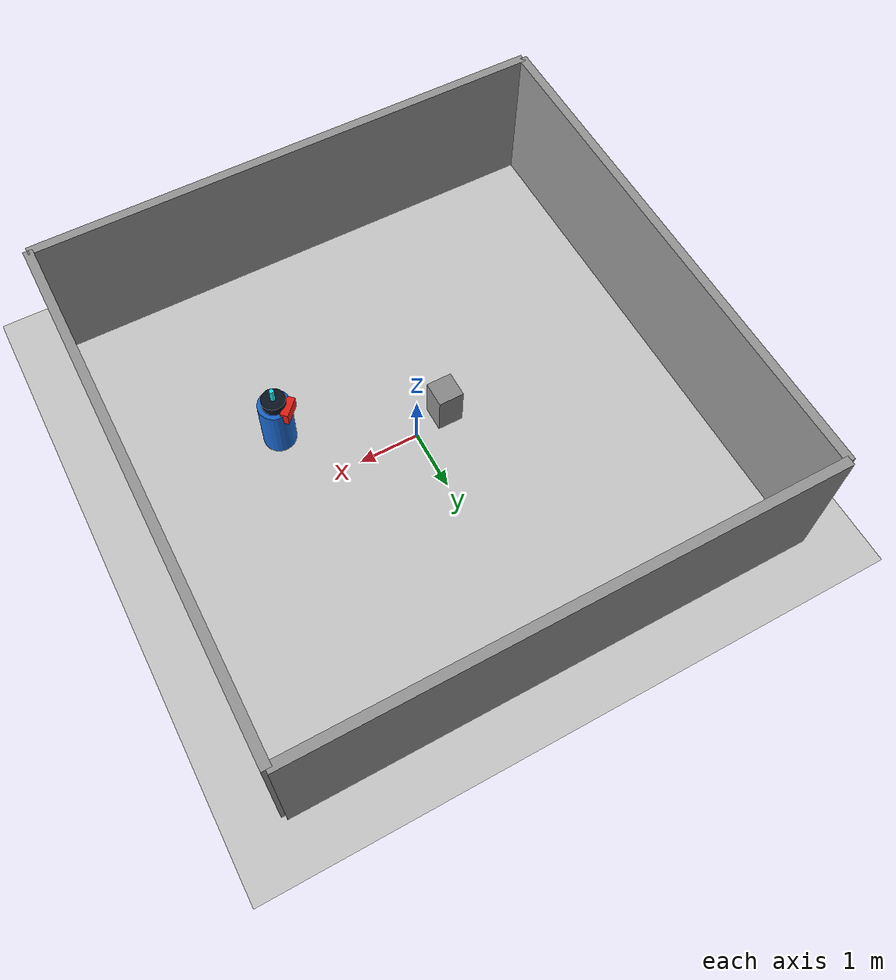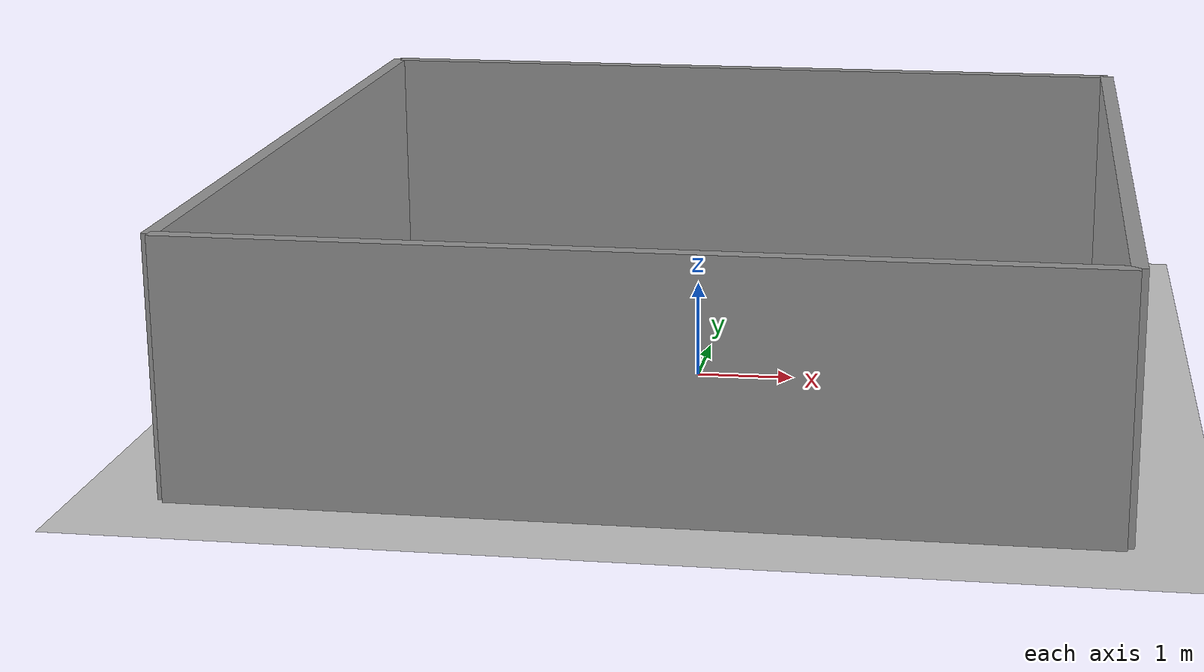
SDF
<sdf version="1.7">
 <world name="default">
  <plugin name="socnav_plugin" filename="libSocNavPlugin.so">
   <robot_name>robot</robot_name>
   <trajectory_file>/home/hunav_gz_classic_ws/SocNav3_trajectories/src6/000003846.json</trajectory_file>
   <human_slots>2</human_slots>
   <goal_angle_mesh>
    <angle_threshold>0.587114989449</angle_threshold>
    <uri>/home/hunav_gz_classic_ws/src/socnav_gazebo_reproducer/meshes/000003846_goal_angle_00.stl</uri>
   </goal_angle_mesh>
  </plugin>
  <light name="sun" type="directional">
   <pose>0 0 10 0 -0 0</pose>
   <diffuse>0.8 0.8 0.8 1</diffuse>
   <specular>0.2 0.2 0.2 1</specular>
   <attenuation>
    <range>1000</range>
    <constant>0.9</constant>
    <linear>0.01</linear>
    <quadratic>0.001</quadratic>
   </attenuation>
   <direction>-0.5 0.1 -0.9</direction>
   <spot><inner_angle>0</inner_angle><outer_angle>0</outer_angle><falloff>0</falloff></spot>
  </light>
  <model name="ground_plane">
   <static>1</static>
   <link name="link">
    <collision name="collision">
     <geometry><plane><normal>0 0 1</normal><size>100 100</size></plane></geometry>
     <surface><friction><ode><mu>100</mu><mu2>50</mu2></ode></friction></surface>
    </collision>
    <visual name="visual">
     <cast_shadows>0</cast_shadows>
     <geometry><plane><normal>0 0 1</normal><size>100 100</size></plane></geometry>
     <material>
      <script><uri>file://media/materials/scripts/kitchen.material</uri><name>Kitchen/CounterTop_H</name></script>
     </material>
    </visual>
   </link>
  </model>
  <gravity>0 0 -9.8</gravity>
  <magnetic_field>6e-06 2.3e-05 -4.2e-05</magnetic_field>
  <atmosphere type="adiabatic"/>
  <physics type="ode">
   <max_step_size>0.001</max_step_size>
   <real_time_factor>1</real_time_factor>
   <real_time_update_rate>1000</real_time_update_rate>
  </physics>
  <scene><ambient>0.4 0.4 0.4 1</ambient><background>0.7 0.7 0.7 1</background><shadows>1</shadows></scene>
  <audio><device>default</device></audio>
  <spherical_coordinates>
   <surface_model>EARTH_WGS84</surface_model>
   <latitude_deg>0</latitude_deg>
   <longitude_deg>0</longitude_deg>
   <elevation>0</elevation>
   <heading_deg>0</heading_deg>
  </spherical_coordinates>
  <model name="robot">
   <pose>1.926621680483036 -1.0214329552143548 0.5 0 0 2.3677359689317363</pose>
   <link name="link">
    <collision name="collision">
     <geometry><cylinder><radius>0.2661195090346957</radius><length>1.0</length></cylinder></geometry>
    </collision>
    <visual name="visual">
     <geometry><cylinder><radius>0.2661195090346957</radius><length>1.0</length></cylinder></geometry>
     <material><ambient>0.1 0.4 0.8 1</ambient><diffuse>0.1 0.4 0.8 1</diffuse></material>
    </visual>
    <visual name="robot_top">
     <pose>0 0 0.58 0 0 0</pose>
     <geometry><cylinder><radius>0.19160604650498092</radius><length>0.16</length></cylinder></geometry>
     <material><ambient>0.04 0.08 0.12 1</ambient><diffuse>0.04 0.08 0.12 1</diffuse></material>
    </visual>
    <visual name="robot_front">
     <pose>0.2235403875891444 0 0.44 0 0 0</pose>
     <geometry><box><size>0.12773736433665395 0.3406329715644105 0.24</size></box></geometry>
     <material><ambient>0.9 0.12 0.08 1</ambient><diffuse>0.9 0.12 0.08 1</diffuse></material>
    </visual>
    <visual name="robot_sensor">
     <pose>0 0 0.78 0 0 0</pose>
     <geometry><cylinder><radius>0.03725673126485741</radius><length>0.24</length></cylinder></geometry>
     <material><ambient>0.1 0.9 0.9 1</ambient><diffuse>0.1 0.9 0.9 1</diffuse></material>
    </visual>
   </link>
  </model>
  <model name="static_object_1">
   <static>true</static>
   <pose>-0.5833223843275923 -0.1616933905651985 0.375 0 0 0</pose>
   <link name="link">
    <collision name="collision">
     <geometry><box><size>0.42172267682751713 0.42172267682751713 0.75</size></box></geometry>
    </collision>
    <visual name="visual">
     <geometry><box><size>0.42172267682751713 0.42172267682751713 0.75</size></box></geometry>
     <material><ambient>0.55 0.55 0.55 1</ambient><diffuse>0.55 0.55 0.55 1</diffuse></material>
    </visual>
   </link>
  </model>
  <model name="simple_world_test">
   <link name="Wall_0">
    <collision name="Wall_0_Collision">
     <geometry><box><size>8.615749531336164 0.15 2.5</size></box></geometry>
     <pose>0 0 1.25 0 -0 0</pose>
    </collision>
    <visual name="Wall_0_Visual">
     <pose>0 0 1.25 0 -0 0</pose>
     <geometry><box><size>8.615749531336164 0.15 2.5</size></box></geometry>
     <material>
      <script><uri>file://media/materials/scripts/gazebo.material</uri><name>Gazebo/Grey</name></script>
      <ambient>1 1 1 1</ambient>
     </material>
     <meta><layer>0</layer></meta>
    </visual>
    <pose>4.297874765668082 0.0 0 0 -0 -1.5707963267948966</pose>
   </link>
   <link name="Wall_1">
    <collision name="Wall_1_Collision">
     <geometry><box><size>8.615749531336164 0.15 2.5</size></box></geometry>
     <pose>0 0 1.25 0 -0 0</pose>
    </collision>
    <visual name="Wall_1_Visual">
     <pose>0 0 1.25 0 -0 0</pose>
     <geometry><box><size>8.615749531336164 0.15 2.5</size></box></geometry>
     <material>
      <script><uri>file://media/materials/scripts/gazebo.material</uri><name>Gazebo/Grey</name></script>
      <ambient>1 1 1 1</ambient>
     </material>
     <meta><layer>0</layer></meta>
    </visual>
    <pose>0.0 -4.297874765668082 0 0 -0 -3.141592653589793</pose>
   </link>
   <link name="Wall_2">
    <collision name="Wall_2_Collision">
     <geometry><box><size>8.615749531336164 0.15 2.5</size></box></geometry>
     <pose>0 0 1.25 0 -0 0</pose>
    </collision>
    <visual name="Wall_2_Visual">
     <pose>0 0 1.25 0 -0 0</pose>
     <geometry><box><size>8.615749531336164 0.15 2.5</size></box></geometry>
     <material>
      <script><uri>file://media/materials/scripts/gazebo.material</uri><name>Gazebo/Grey</name></script>
      <ambient>1 1 1 1</ambient>
     </material>
     <meta><layer>0</layer></meta>
    </visual>
    <pose>-4.297874765668082 0.0 0 0 -0 1.5707963267948966</pose>
   </link>
   <link name="Wall_3">
    <collision name="Wall_3_Collision">
     <geometry><box><size>8.615749531336164 0.15 2.5</size></box></geometry>
     <pose>0 0 1.25 0 -0 0</pose>
    </collision>
    <visual name="Wall_3_Visual">
     <pose>0 0 1.25 0 -0 0</pose>
     <geometry><box><size>8.615749531336164 0.15 2.5</size></box></geometry>
     <material>
      <script><uri>file://media/materials/scripts/gazebo.material</uri><name>Gazebo/Grey</name></script>
      <ambient>1 1 1 1</ambient>
     </material>
     <meta><layer>0</layer></meta>
    </visual>
    <pose>0.0 4.297874765668082 0 0 -0 0.0</pose>
   </link>
   <static>1</static>
  </model>
 </world>
</sdf>
